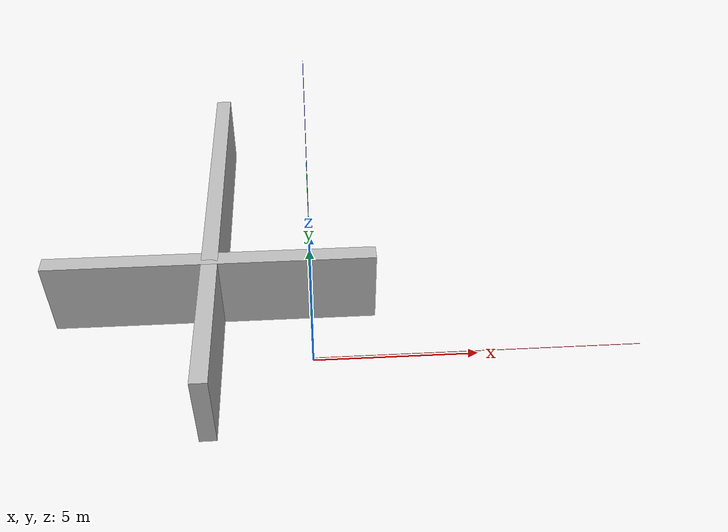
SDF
<sdf version="1.9">
 <world name="iris_runway">
  <physics name="1ms" type="ignore">
   <max_step_size>0.001</max_step_size>
   <real_time_factor>1.0</real_time_factor>
  </physics>
  <model name="wall_1">
   <static>true</static>
   <link name="link">
    <collision name="collision"><geometry><box><size>10 0.5 2.5</size></box></geometry></collision>
    <visual name="visual"><geometry><box><size>10 0.5 2.5</size></box></geometry></visual>
   </link>
   <pose>-3 2 1.25 0 0 0</pose>
  </model>
  <model name="wall_2">
   <static>true</static>
   <link name="link">
    <collision name="collision"><geometry><box><size>13.5 0.5 2.5</size></box></geometry></collision>
    <visual name="visual"><geometry><box><size>13.5 0.5 2.5</size></box></geometry></visual>
   </link>
   <pose>-3 4 1.25 0 0 1.5708</pose>
  </model>
  <plugin filename="gz-sim-physics-system" name="gz::sim::systems::Physics"/>
  <plugin filename="gz-sim-sensors-system" name="gz::sim::systems::Sensors">
   <render_engine>ogre2</render_engine>
  </plugin>
  <plugin filename="gz-sim-user-commands-system" name="gz::sim::systems::UserCommands"/>
  <plugin filename="gz-sim-scene-broadcaster-system" name="gz::sim::systems::SceneBroadcaster"/>
  <plugin filename="gz-sim-imu-system" name="gz::sim::systems::Imu"/>
  <plugin filename="gz-sim-navsat-system" name="gz::sim::systems::NavSat"/>
  <plugin name="ArduPilotPlugin" filename="libArduPilotPlugin.so">
   <fdm_addr>127.0.0.1</fdm_addr>
   <fdm_port_in>9002</fdm_port_in>
   <mavlink_addr>127.0.0.1</mavlink_addr>
   <mavlink_udp_port>14550</mavlink_udp_port>
   <mavlink_tcp_port>5760</mavlink_tcp_port>
  </plugin>
  <scene><ambient>1.0 1.0 1.0</ambient><background>0.8 0.8 0.8</background></scene>
  <spherical_coordinates>
   <latitude_deg>-35.363262</latitude_deg>
   <longitude_deg>149.165237</longitude_deg>
   <elevation>584</elevation>
   <heading_deg>0</heading_deg>
   <surface_model>EARTH_WGS84</surface_model>
  </spherical_coordinates>
  <light type="directional" name="sun">
   <pose>0 0 10 0 0 0</pose>
   <diffuse>0.8 0.8 0.8 1</diffuse>
   <specular>0.8 0.8 0.8 1</specular>
   <attenuation>
    <range>1000</range>
    <constant>0.9</constant>
    <linear>0.01</linear>
    <quadratic>0.001</quadratic>
   </attenuation>
   <direction>-0.5 0.1 -0.9</direction>
  </light>
  <model name="axes">
   <static>1</static>
   <link name="link">
    <visual name="r">
     <cast_shadows>0</cast_shadows>
     <pose>5 0 0.1 0 0 0</pose>
     <geometry><box><size>10 0.01 0.01</size></box></geometry>
     <material>
      <ambient>1 0 0 0.8</ambient>
      <diffuse>1 0 0 0.8</diffuse>
      <emissive>1 0 0 0.8</emissive>
      <specular>0.5 0.5 0.5 0.8</specular>
     </material>
    </visual>
    <visual name="g">
     <cast_shadows>0</cast_shadows>
     <pose>0 5 0.1 0 0 0</pose>
     <geometry><box><size>0.01 10 0.01</size></box></geometry>
     <material>
      <ambient>0 1 0 0.8</ambient>
      <diffuse>0 1 0 0.8</diffuse>
      <emissive>0 1 0 0.8</emissive>
      <specular>0.5 0.5 0.5 0.8</specular>
     </material>
    </visual>
    <visual name="b">
     <cast_shadows>0</cast_shadows>
     <pose>0 0 5.1 0 0 0</pose>
     <geometry><box><size>0.01 0.01 10</size></box></geometry>
     <material>
      <ambient>0 0 1 0.8</ambient>
      <diffuse>0 0 1 0.8</diffuse>
      <emissive>0 0 1 0.8</emissive>
      <specular>0.5 0.5 0.5 0.8</specular>
     </material>
    </visual>
    <sensor name="navsat_sensor" type="navsat"><always_on>1</always_on><update_rate>1</update_rate></sensor>
   </link>
  </model>
 </world>
</sdf>
